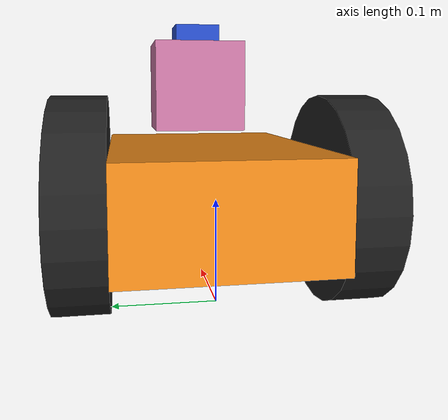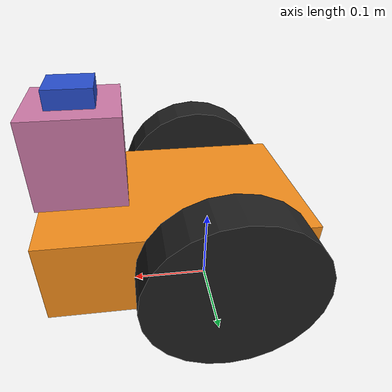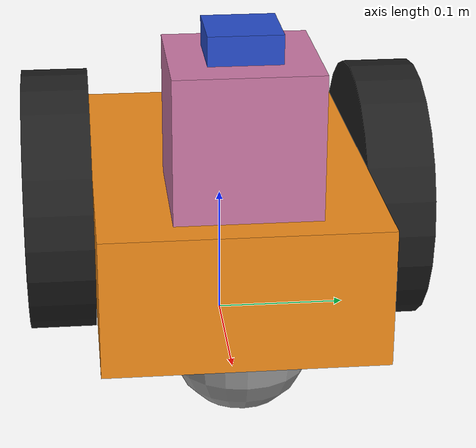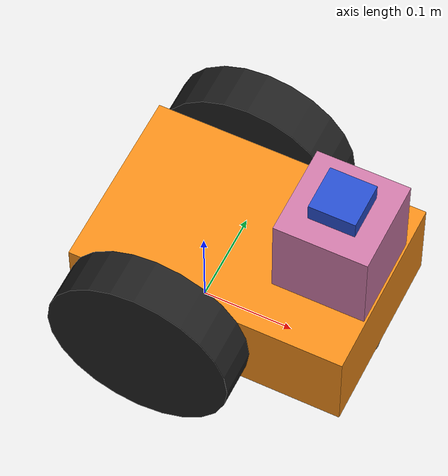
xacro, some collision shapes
<?xml version="1.0"?>

<robot name="robot" xmlns:xacro="http://www.ros.org/wiki/xacro">
  <xacro:property name="PI" value="3.1415926535897931"/>

  <xacro:property name="chassisHeight" value="0.1"/>
  <xacro:property name="chassisLength" value="0.3"/>
  <xacro:property name="chassisWidth" value="0.2"/>
  <xacro:property name="chassisMass" value="5"/>

  <xacro:property name="casterRadius" value="0.05"/>
  <xacro:property name="casterMass" value="0.5"/>
  <xacro:property name="casterPos" value="0.2"/>

  <xacro:property name="wheelWidth" value="0.05"/>
  <xacro:property name="wheelRadius" value="0.1"/>
  <xacro:property name="wheelPos" value="0.05"/>  <!-- Distance of the wheels axis to the center of the robot -->
  <xacro:property name="wheelMass" value="0.5"/>

  <xacro:property name="cameraSize" value="0.05"/>
  <xacro:property name="cameraMass" value="0.1"/>

  <xacro:include filename="$(find robot_description)/urdf/robot.gazebo" />
  <xacro:include filename="$(find robot_description)/urdf/materials.xacro" />
  <xacro:include filename="$(find robot_description)/urdf/macros.xacro" />

  <!-- Chassis -->
  <link name="base_link" />

  <joint name="base_joint" type="fixed">
    <parent link="base_link"/>
    <child link="chassis"/>
    <origin xyz="${wheelPos} 0 0" rpy="0 0 0" />
  </joint>

  <link name="chassis">
    <collision>
      <origin xyz="0 0 ${wheelRadius}" rpy="0 0 0"/>
      <geometry>
        <box size="${chassisLength} ${chassisWidth} ${chassisHeight}"/>
      </geometry>
    </collision>

    <visual>
      <origin xyz="0 0 ${wheelRadius}" rpy="0 0 0"/>
      <geometry>
        <box size="${chassisLength} ${chassisWidth} ${chassisHeight}"/>
      </geometry>
      <material name="orange"/>
    </visual>

    <inertial>
      <origin xyz="0 0 ${wheelRadius}" rpy="0 0 0"/>
      <mass value="${chassisMass}"/>
      <box_inertia m="${chassisMass}" x="${chassisLength}" y="${chassisWidth}" z="${chassisHeight}"/>
    </inertial>
  </link>

  <!-- Caster wheel -->
  <joint name="fixed" type="fixed">
    <parent link="chassis"/>
    <child link="caster_wheel"/>
    <origin xyz="${casterPos} 0 0" rpy="0 0 0" />
  </joint>

  <link name="caster_wheel">
    <collision>
      <origin xyz="${casterRadius-chassisLength/2} 0 ${casterRadius-chassisHeight+wheelRadius}" rpy="0 0 0"/>
      <geometry>
        <sphere radius="${casterRadius}"/>
      </geometry>
    </collision>

    <visual>
      <origin xyz="${casterRadius-chassisLength/2} 0 ${casterRadius-chassisHeight+wheelRadius}" rpy="0 0 0"/>
      <geometry>
        <sphere radius="${casterRadius}"/>
      </geometry>
    </visual>

    <inertial>
      <origin xyz="${casterRadius-chassisLength/2} 0 ${casterRadius-chassisHeight+wheelRadius}" rpy="0 0 0"/>
      <mass value="${casterMass}"/>
      <sphere_inertia m="${casterMass}" r="${casterRadius}"/>
    </inertial>
  </link>

  <!-- Fixed wheels -->
  <wheel lr="left" tY="1"/>
  <wheel lr="right" tY="-1"/>

  <!-- Camera -->
  <joint name="camera_joint" type="fixed">
    <origin xyz="${-cameraSize+chassisLength/2} 0 ${cameraSize+wheelRadius+cameraSize/2+0.08}" rpy="0 0 0"/>
    <parent link="chassis"/>
    <child link="camera"/>
  </joint>

  <link name="camera">
    <collision>
      <origin xyz="0 0 0" rpy="0 0 0"/>
      <geometry>
        <box size="${cameraSize} ${cameraSize} ${cameraSize}"/>
      </geometry>
    </collision>

    <visual>
      <origin xyz="0 0 0" rpy="0 0 0"/>
      <geometry>
        <box size="${cameraSize} ${cameraSize} ${cameraSize}"/>
      </geometry>
      <material name="blue"/>
    </visual>

    <inertial>
      <mass value="${cameraMass}" />
      <origin xyz="0 0 0" rpy="0 0 0"/>
      <box_inertia m="${cameraMass}" x="${cameraSize}" y="${cameraSize}" z="${cameraSize}" />
    </inertial>
  </link>

  <!-- Hokuyo -->
  <joint name="hokuyo_joint" type="fixed">
    <origin xyz="${-cameraSize+chassisLength/2} 0 ${2*wheelRadius + 0.01}" rpy="0 0 0"/>
    <parent link="chassis"/>
    <child link="hokuyo_link"/>
  </joint>

  <link name="hokuyo_link">
    <collision>
      <origin xyz="0 0 0" rpy="0 0 0"/>
      <geometry>
        <box size="0.1 0.1 0.1"/>
      </geometry>
    </collision>

    <visual>
      <origin xyz="0 0 -0.02" rpy="0 0 0"/>
      <geometry>
        <mesh filename="package://robot_description/urdf/hokuyo.dae"/>
      </geometry>
    </visual>

    <inertial>
      <mass value="1e-5" />
      <origin xyz="0 0 0" rpy="0 0 0"/>
      <inertia ixx="1e-6" ixy="0" ixz="0" iyy="1e-6" iyz="0" izz="1e-6" />
    </inertial>
  </link>

</robot>

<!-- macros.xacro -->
<robot>
  <macro name="cylinder_inertia" params="m r h">
    <inertia ixx="${m*(3*r*r+h*h)/12}" ixy = "0" ixz = "0"
             iyy="${m*(3*r*r+h*h)/12}" iyz = "0"
             izz="${m*r*r/2}" />
  </macro>

  <macro name="box_inertia" params="m x y z">
    <inertia ixx="${m*(y*y+z*z)/12}" ixy = "0" ixz = "0"
             iyy="${m*(x*x+z*z)/12}" iyz = "0"
             izz="${m*(x*x+z*z)/12}" />
  </macro>

  <macro name="sphere_inertia" params="m r">
    <inertia ixx="${2*m*r*r/5}" ixy = "0" ixz = "0"
             iyy="${2*m*r*r/5}" iyz = "0"
             izz="${2*m*r*r/5}" />
  </macro>

  <macro name="wheel" params="lr tY">
    <link name="${lr}_wheel">
      <collision>
        <origin xyz="0 0 0" rpy="0 ${PI/2} ${PI/2}" />
        <geometry>
        <cylinder length="${wheelWidth}" radius="${wheelRadius}"/>
        </geometry>
      </collision>

      <visual>
        <origin xyz="0 0 0" rpy="0 ${PI/2} ${PI/2}" />
        <geometry>
        <cylinder length="${wheelWidth}" radius="${wheelRadius}"/>
        </geometry>
        <material name="black"/>
      </visual>

      <inertial>
        <origin xyz="0 0 0" rpy="0 ${PI/2} ${PI/2}" />
        <mass value="${wheelMass}"/>
        <cylinder_inertia m="${wheelMass}" r="${wheelRadius}" h="${wheelWidth}"/>
      </inertial>
    </link>

    <gazebo reference="${lr}_wheel">
      <mu1 value="1.0"/>
      <mu2 value="1.0"/>
      <kp value="10000000.0" />
      <kd value="1.0" />
      <fdir1 value="1 0 0"/>
      <material>Gazebo/Black</material>
    </gazebo>

    <joint name="${lr}_wheel_hinge" type="continuous">
      <parent link="chassis"/>
      <child link="${lr}_wheel"/>
      <origin xyz="${-wheelPos} ${tY*wheelWidth/2+tY*chassisWidth/2} ${wheelRadius}" rpy="0 0 0" />
      <axis xyz="0 1 0" rpy="0 0 0" />
      <limit effort="100" velocity="100"/>
      <joint_properties damping="0.0" friction="0.0"/>
    </joint>

    <transmission name="${lr}_trans">
      <type>transmission_interface/SimpleTransmission</type>
      <joint name="${lr}_wheel_hinge"/>
      <actuator name="${lr}Motor">
        <hardwareInterface>EffortJointInterface</hardwareInterface>
        <mechanicalReduction>10</mechanicalReduction>
      </actuator>
    </transmission>

  </macro>
</robot>
